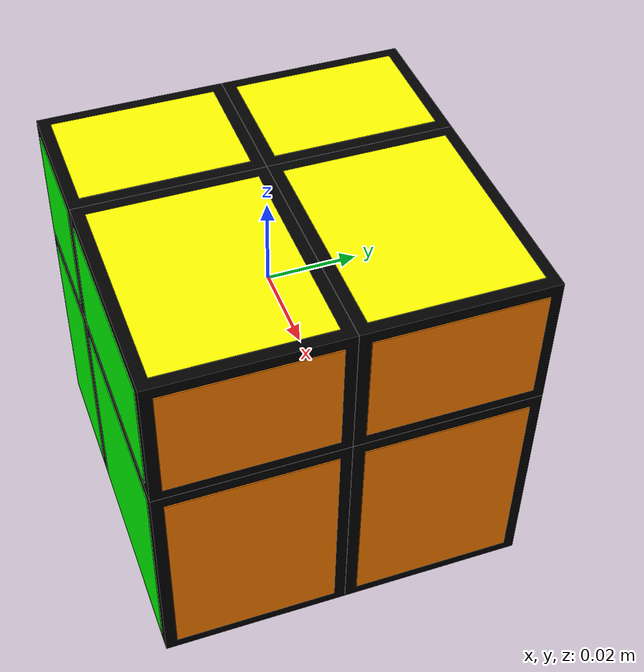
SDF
<?xml version="1.0" ?>
<sdf version="1.7">
	<model name="mirror_cube_2x2">
		<link name="center"/>
		<link name="cubie_0_0_0">
			<pose>-0.01505 -0.020050000000000002 -0.025050000000000003 0.0 0.0 0.0</pose>
			<inertial>
				<mass>0.023399999999999997</mass>
				<inertia>
					<ixx>7.994999999999999e-06</ixx>
					<ixy>0.0</ixy>
					<ixz>0.0</ixz>
					<iyy>6.629999999999999e-06</iyy>
					<iyz>0.0</iyz>
					<izz>4.874999999999999e-06</izz>
				</inertia>
			</inertial>
			<collision name="collision">
				<geometry>
					<box>
						<size>0.03 0.04 0.05</size>
					</box>
				</geometry>
				<surface>
					<friction>
						<ode>
							<mu>0.6</mu>
							<mu2>0.6</mu2>
						</ode>
					</friction>
				</surface>
			</collision>
			<visual name="black">
				<geometry>
					<box>
						<size>0.03 0.04 0.05</size>
					</box>
				</geometry>
				<material>
					<diffuse>0 0 0 1</diffuse>
				</material>
			</visual>
			<visual name="red">
				<pose>-0.015 0.0 0.0 0.0 0.0 0.0</pose>
				<geometry>
					<box>
						<size>0.00025 0.035 0.045</size>
					</box>
				</geometry>
				<material>
					<diffuse>1 0 0 1</diffuse>
				</material>
			</visual>
			<visual name="green">
				<pose>0.0 -0.02 0.0 0.0 0.0 0.0</pose>
				<geometry>
					<box>
						<size>0.025 0.00035 0.045</size>
					</box>
				</geometry>
				<material>
					<diffuse>0 1 0 1</diffuse>
				</material>
			</visual>
			<visual name="white">
				<pose>0.0 0.0 -0.025 0.0 0.0 0.0</pose>
				<geometry>
					<box>
						<size>0.025 0.035 0.00045</size>
					</box>
				</geometry>
				<material>
					<diffuse>1 1 1 1</diffuse>
				</material>
			</visual>
		</link>
		<joint name="ball_0_0_0" type="ball">
			<pose>0.01505 0.020050000000000002 0.025050000000000003 -0.0 -0.0 -0.0</pose>
			<parent>center</parent>
			<child>cubie_0_0_0</child>
			<axis>
				<dynamics>
					<damping>0.1</damping>
				</dynamics>
				<limit>
					<effort>0</effort>
				</limit>
			</axis>
		</joint>
		<link name="cubie_0_0_1">
			<pose>-0.01505 -0.020050000000000002 0.01505 0.0 0.0 0.0</pose>
			<inertial>
				<mass>0.014039999999999997</mass>
				<inertia>
					<ixx>2.9249999999999995e-06</ixx>
					<ixy>0.0</ixy>
					<ixz>0.0</ixz>
					<iyy>2.1059999999999994e-06</iyy>
					<iyz>0.0</iyz>
					<izz>2.9249999999999995e-06</izz>
				</inertia>
			</inertial>
			<collision name="collision">
				<geometry>
					<box>
						<size>0.03 0.04 0.03</size>
					</box>
				</geometry>
				<surface>
					<friction>
						<ode>
							<mu>0.6</mu>
							<mu2>0.6</mu2>
						</ode>
					</friction>
				</surface>
			</collision>
			<visual name="black">
				<geometry>
					<box>
						<size>0.03 0.04 0.03</size>
					</box>
				</geometry>
				<material>
					<diffuse>0 0 0 1</diffuse>
				</material>
			</visual>
			<visual name="red">
				<pose>-0.015 0.0 0.0 0.0 0.0 0.0</pose>
				<geometry>
					<box>
						<size>0.00025 0.035 0.025</size>
					</box>
				</geometry>
				<material>
					<diffuse>1 0 0 1</diffuse>
				</material>
			</visual>
			<visual name="green">
				<pose>0.0 -0.02 0.0 0.0 0.0 0.0</pose>
				<geometry>
					<box>
						<size>0.025 0.00035 0.025</size>
					</box>
				</geometry>
				<material>
					<diffuse>0 1 0 1</diffuse>
				</material>
			</visual>
			<visual name="yellow">
				<pose>0.0 0.0 0.015 0.0 0.0 0.0</pose>
				<geometry>
					<box>
						<size>0.025 0.035 0.00025</size>
					</box>
				</geometry>
				<material>
					<diffuse>1 1 0 1</diffuse>
				</material>
			</visual>
		</link>
		<joint name="ball_0_0_1" type="ball">
			<pose>0.01505 0.020050000000000002 -0.01505 -0.0 -0.0 -0.0</pose>
			<parent>center</parent>
			<child>cubie_0_0_1</child>
			<axis>
				<dynamics>
					<damping>0.1</damping>
				</dynamics>
				<limit>
					<effort>0</effort>
				</limit>
			</axis>
		</joint>
		<link name="cubie_0_1_0">
			<pose>-0.01505 0.020050000000000002 -0.025050000000000003 0.0 0.0 0.0</pose>
			<inertial>
				<mass>0.023399999999999997</mass>
				<inertia>
					<ixx>7.994999999999999e-06</ixx>
					<ixy>0.0</ixy>
					<ixz>0.0</ixz>
					<iyy>6.629999999999999e-06</iyy>
					<iyz>0.0</iyz>
					<izz>4.874999999999999e-06</izz>
				</inertia>
			</inertial>
			<collision name="collision">
				<geometry>
					<box>
						<size>0.03 0.04 0.05</size>
					</box>
				</geometry>
				<surface>
					<friction>
						<ode>
							<mu>0.6</mu>
							<mu2>0.6</mu2>
						</ode>
					</friction>
				</surface>
			</collision>
			<visual name="black">
				<geometry>
					<box>
						<size>0.03 0.04 0.05</size>
					</box>
				</geometry>
				<material>
					<diffuse>0 0 0 1</diffuse>
				</material>
			</visual>
			<visual name="red">
				<pose>-0.015 0.0 0.0 0.0 0.0 0.0</pose>
				<geometry>
					<box>
						<size>0.00025 0.035 0.045</size>
					</box>
				</geometry>
				<material>
					<diffuse>1 0 0 1</diffuse>
				</material>
			</visual>
			<visual name="blue">
				<pose>0.0 0.02 0.0 0.0 0.0 0.0</pose>
				<geometry>
					<box>
						<size>0.025 0.00035 0.045</size>
					</box>
				</geometry>
				<material>
					<diffuse>0 0 1 1</diffuse>
				</material>
			</visual>
			<visual name="white">
				<pose>0.0 0.0 -0.025 0.0 0.0 0.0</pose>
				<geometry>
					<box>
						<size>0.025 0.035 0.00045</size>
					</box>
				</geometry>
				<material>
					<diffuse>1 1 1 1</diffuse>
				</material>
			</visual>
		</link>
		<joint name="ball_0_1_0" type="ball">
			<pose>0.01505 -0.020050000000000002 0.025050000000000003 -0.0 -0.0 -0.0</pose>
			<parent>center</parent>
			<child>cubie_0_1_0</child>
			<axis>
				<dynamics>
					<damping>0.1</damping>
				</dynamics>
				<limit>
					<effort>0</effort>
				</limit>
			</axis>
		</joint>
		<link name="cubie_0_1_1">
			<pose>-0.01505 0.020050000000000002 0.01505 0.0 0.0 0.0</pose>
			<inertial>
				<mass>0.014039999999999997</mass>
				<inertia>
					<ixx>2.9249999999999995e-06</ixx>
					<ixy>0.0</ixy>
					<ixz>0.0</ixz>
					<iyy>2.1059999999999994e-06</iyy>
					<iyz>0.0</iyz>
					<izz>2.9249999999999995e-06</izz>
				</inertia>
			</inertial>
			<collision name="collision">
				<geometry>
					<box>
						<size>0.03 0.04 0.03</size>
					</box>
				</geometry>
				<surface>
					<friction>
						<ode>
							<mu>0.6</mu>
							<mu2>0.6</mu2>
						</ode>
					</friction>
				</surface>
			</collision>
			<visual name="black">
				<geometry>
					<box>
						<size>0.03 0.04 0.03</size>
					</box>
				</geometry>
				<material>
					<diffuse>0 0 0 1</diffuse>
				</material>
			</visual>
			<visual name="red">
				<pose>-0.015 0.0 0.0 0.0 0.0 0.0</pose>
				<geometry>
					<box>
						<size>0.00025 0.035 0.025</size>
					</box>
				</geometry>
				<material>
					<diffuse>1 0 0 1</diffuse>
				</material>
			</visual>
			<visual name="blue">
				<pose>0.0 0.02 0.0 0.0 0.0 0.0</pose>
				<geometry>
					<box>
						<size>0.025 0.00035 0.025</size>
					</box>
				</geometry>
				<material>
					<diffuse>0 0 1 1</diffuse>
				</material>
			</visual>
			<visual name="yellow">
				<pose>0.0 0.0 0.015 0.0 0.0 0.0</pose>
				<geometry>
					<box>
						<size>0.025 0.035 0.00025</size>
					</box>
				</geometry>
				<material>
					<diffuse>1 1 0 1</diffuse>
				</material>
			</visual>
		</link>
		<joint name="ball_0_1_1" type="ball">
			<pose>0.01505 -0.020050000000000002 -0.01505 -0.0 -0.0 -0.0</pose>
			<parent>center</parent>
			<child>cubie_0_1_1</child>
			<axis>
				<dynamics>
					<damping>0.1</damping>
				</dynamics>
				<limit>
					<effort>0</effort>
				</limit>
			</axis>
		</joint>
		<link name="cubie_1_0_0">
			<pose>0.025050000000000003 -0.020050000000000002 -0.025050000000000003 0.0 0.0 0.0</pose>
			<inertial>
				<mass>0.039</mass>
				<inertia>
					<ixx>1.3325e-05</ixx>
					<ixy>0.0</ixy>
					<ixz>0.0</ixz>
					<iyy>1.6250000000000002e-05</iyy>
					<iyz>0.0</iyz>
					<izz>1.3325e-05</izz>
				</inertia>
			</inertial>
			<collision name="collision">
				<geometry>
					<box>
						<size>0.05 0.04 0.05</size>
					</box>
				</geometry>
				<surface>
					<friction>
						<ode>
							<mu>0.6</mu>
							<mu2>0.6</mu2>
						</ode>
					</friction>
				</surface>
			</collision>
			<visual name="black">
				<geometry>
					<box>
						<size>0.05 0.04 0.05</size>
					</box>
				</geometry>
				<material>
					<diffuse>0 0 0 1</diffuse>
				</material>
			</visual>
			<visual name="orange">
				<pose>0.025 0.0 0.0 0.0 0.0 0.0</pose>
				<geometry>
					<box>
						<size>0.00045 0.035 0.045</size>
					</box>
				</geometry>
				<material>
					<diffuse>1.0 0.5 0.0 1.0</diffuse>
				</material>
			</visual>
			<visual name="green">
				<pose>0.0 -0.02 0.0 0.0 0.0 0.0</pose>
				<geometry>
					<box>
						<size>0.045 0.00035 0.045</size>
					</box>
				</geometry>
				<material>
					<diffuse>0 1 0 1</diffuse>
				</material>
			</visual>
			<visual name="white">
				<pose>0.0 0.0 -0.025 0.0 0.0 0.0</pose>
				<geometry>
					<box>
						<size>0.045 0.035 0.00045</size>
					</box>
				</geometry>
				<material>
					<diffuse>1 1 1 1</diffuse>
				</material>
			</visual>
		</link>
		<joint name="ball_1_0_0" type="ball">
			<pose>-0.025050000000000003 0.020050000000000002 0.025050000000000003 -0.0 -0.0 -0.0</pose>
			<parent>center</parent>
			<child>cubie_1_0_0</child>
			<axis>
				<dynamics>
					<damping>0.1</damping>
				</dynamics>
				<limit>
					<effort>0</effort>
				</limit>
			</axis>
		</joint>
		<link name="cubie_1_0_1">
			<pose>0.025050000000000003 -0.020050000000000002 0.01505 0.0 0.0 0.0</pose>
			<inertial>
				<mass>0.0234</mass>
				<inertia>
					<ixx>4.875000000000001e-06</ixx>
					<ixy>0.0</ixy>
					<ixz>0.0</ixz>
					<iyy>6.630000000000001e-06</iyy>
					<iyz>0.0</iyz>
					<izz>7.995e-06</izz>
				</inertia>
			</inertial>
			<collision name="collision">
				<geometry>
					<box>
						<size>0.05 0.04 0.03</size>
					</box>
				</geometry>
				<surface>
					<friction>
						<ode>
							<mu>0.6</mu>
							<mu2>0.6</mu2>
						</ode>
					</friction>
				</surface>
			</collision>
			<visual name="black">
				<geometry>
					<box>
						<size>0.05 0.04 0.03</size>
					</box>
				</geometry>
				<material>
					<diffuse>0 0 0 1</diffuse>
				</material>
			</visual>
			<visual name="orange">
				<pose>0.025 0.0 0.0 0.0 0.0 0.0</pose>
				<geometry>
					<box>
						<size>0.00045 0.035 0.025</size>
					</box>
				</geometry>
				<material>
					<diffuse>1.0 0.5 0.0 1.0</diffuse>
				</material>
			</visual>
			<visual name="green">
				<pose>0.0 -0.02 0.0 0.0 0.0 0.0</pose>
				<geometry>
					<box>
						<size>0.045 0.00035 0.025</size>
					</box>
				</geometry>
				<material>
					<diffuse>0 1 0 1</diffuse>
				</material>
			</visual>
			<visual name="yellow">
				<pose>0.0 0.0 0.015 0.0 0.0 0.0</pose>
				<geometry>
					<box>
						<size>0.045 0.035 0.00025</size>
					</box>
				</geometry>
				<material>
					<diffuse>1 1 0 1</diffuse>
				</material>
			</visual>
		</link>
		<joint name="ball_1_0_1" type="ball">
			<pose>-0.025050000000000003 0.020050000000000002 -0.01505 -0.0 -0.0 -0.0</pose>
			<parent>center</parent>
			<child>cubie_1_0_1</child>
			<axis>
				<dynamics>
					<damping>0.1</damping>
				</dynamics>
				<limit>
					<effort>0</effort>
				</limit>
			</axis>
		</joint>
		<link name="cubie_1_1_0">
			<pose>0.025050000000000003 0.020050000000000002 -0.025050000000000003 0.0 0.0 0.0</pose>
			<inertial>
				<mass>0.039</mass>
				<inertia>
					<ixx>1.3325e-05</ixx>
					<ixy>0.0</ixy>
					<ixz>0.0</ixz>
					<iyy>1.6250000000000002e-05</iyy>
					<iyz>0.0</iyz>
					<izz>1.3325e-05</izz>
				</inertia>
			</inertial>
			<collision name="collision">
				<geometry>
					<box>
						<size>0.05 0.04 0.05</size>
					</box>
				</geometry>
				<surface>
					<friction>
						<ode>
							<mu>0.6</mu>
							<mu2>0.6</mu2>
						</ode>
					</friction>
				</surface>
			</collision>
			<visual name="black">
				<geometry>
					<box>
						<size>0.05 0.04 0.05</size>
					</box>
				</geometry>
				<material>
					<diffuse>0 0 0 1</diffuse>
				</material>
			</visual>
			<visual name="orange">
				<pose>0.025 0.0 0.0 0.0 0.0 0.0</pose>
				<geometry>
					<box>
						<size>0.00045 0.035 0.045</size>
					</box>
				</geometry>
				<material>
					<diffuse>1.0 0.5 0.0 1.0</diffuse>
				</material>
			</visual>
			<visual name="blue">
				<pose>0.0 0.02 0.0 0.0 0.0 0.0</pose>
				<geometry>
					<box>
						<size>0.045 0.00035 0.045</size>
					</box>
				</geometry>
				<material>
					<diffuse>0 0 1 1</diffuse>
				</material>
			</visual>
			<visual name="white">
				<pose>0.0 0.0 -0.025 0.0 0.0 0.0</pose>
				<geometry>
					<box>
						<size>0.045 0.035 0.00045</size>
					</box>
				</geometry>
				<material>
					<diffuse>1 1 1 1</diffuse>
				</material>
			</visual>
		</link>
		<joint name="ball_1_1_0" type="ball">
			<pose>-0.025050000000000003 -0.020050000000000002 0.025050000000000003 -0.0 -0.0 -0.0</pose>
			<parent>center</parent>
			<child>cubie_1_1_0</child>
			<axis>
				<dynamics>
					<damping>0.1</damping>
				</dynamics>
				<limit>
					<effort>0</effort>
				</limit>
			</axis>
		</joint>
		<link name="cubie_1_1_1">
			<pose>0.025050000000000003 0.020050000000000002 0.01505 0.0 0.0 0.0</pose>
			<inertial>
				<mass>0.0234</mass>
				<inertia>
					<ixx>4.875000000000001e-06</ixx>
					<ixy>0.0</ixy>
					<ixz>0.0</ixz>
					<iyy>6.630000000000001e-06</iyy>
					<iyz>0.0</iyz>
					<izz>7.995e-06</izz>
				</inertia>
			</inertial>
			<collision name="collision">
				<geometry>
					<box>
						<size>0.05 0.04 0.03</size>
					</box>
				</geometry>
				<surface>
					<friction>
						<ode>
							<mu>0.6</mu>
							<mu2>0.6</mu2>
						</ode>
					</friction>
				</surface>
			</collision>
			<visual name="black">
				<geometry>
					<box>
						<size>0.05 0.04 0.03</size>
					</box>
				</geometry>
				<material>
					<diffuse>0 0 0 1</diffuse>
				</material>
			</visual>
			<visual name="orange">
				<pose>0.025 0.0 0.0 0.0 0.0 0.0</pose>
				<geometry>
					<box>
						<size>0.00045 0.035 0.025</size>
					</box>
				</geometry>
				<material>
					<diffuse>1.0 0.5 0.0 1.0</diffuse>
				</material>
			</visual>
			<visual name="blue">
				<pose>0.0 0.02 0.0 0.0 0.0 0.0</pose>
				<geometry>
					<box>
						<size>0.045 0.00035 0.025</size>
					</box>
				</geometry>
				<material>
					<diffuse>0 0 1 1</diffuse>
				</material>
			</visual>
			<visual name="yellow">
				<pose>0.0 0.0 0.015 0.0 0.0 0.0</pose>
				<geometry>
					<box>
						<size>0.045 0.035 0.00025</size>
					</box>
				</geometry>
				<material>
					<diffuse>1 1 0 1</diffuse>
				</material>
			</visual>
		</link>
		<joint name="ball_1_1_1" type="ball">
			<pose>-0.025050000000000003 -0.020050000000000002 -0.01505 -0.0 -0.0 -0.0</pose>
			<parent>center</parent>
			<child>cubie_1_1_1</child>
			<axis>
				<dynamics>
					<damping>0.1</damping>
				</dynamics>
				<limit>
					<effort>0</effort>
				</limit>
			</axis>
		</joint>
	</model>
</sdf>
